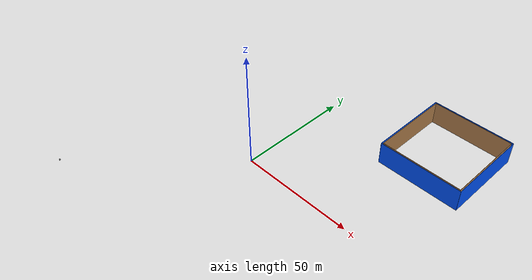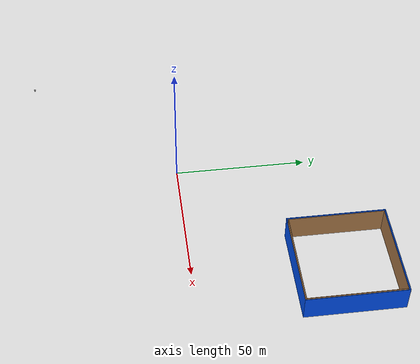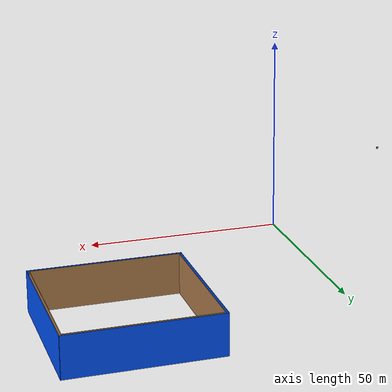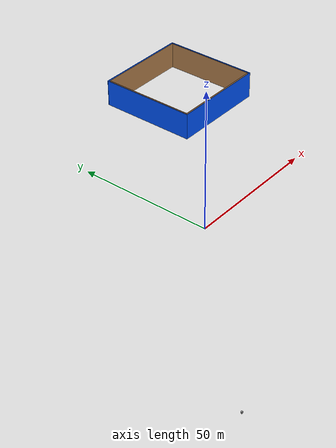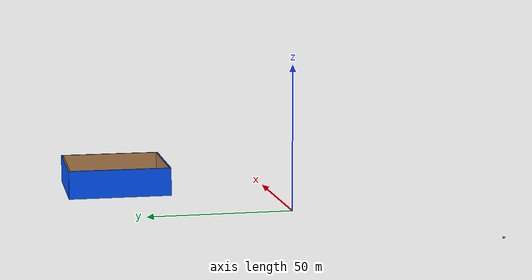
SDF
<?xml version='1.0'?>
<sdf version='1.6'>
  <model name='FlyField3_RailFence'>
    <link name='Wall_0'>
      <pose frame=''>-54.75 -54.75 0 0 -0 0</pose>
      <inertial>
        <mass>1</mass>
        <pose frame=''>0 0 0 0 -0 0</pose>
        <inertia>
          <ixx>1</ixx>
          <ixy>0</ixy>
          <ixz>0</ixz>
          <iyy>1</iyy>
          <iyz>0</iyz>
          <izz>1</izz>
        </inertia>
      </inertial>
      <self_collide>0</self_collide>
      <kinematic>0</kinematic>
      <visual name='Wall_0_Visual'>
        <pose frame=''>0 0 0.25 0 -0 0</pose>
        <geometry>
          <box>
            <size>0.5 0.5 0.5</size>
          </box>
        </geometry>
        <material>
          <script>
            <uri>file://media/materials/scripts/gazebo.material</uri>
            <name>Gazebo/Grey</name>
          </script>
          <ambient>1 1 1 1</ambient>
          <diffuse>0.7 0.7 0.7 1</diffuse>
          <specular>0.01 0.01 0.01 1</specular>
          <emissive>0 0 0 1</emissive>
          <shader type='vertex'>
            <normal_map>__default__</normal_map>
          </shader>
        </material>
        <meta>
          <layer>0</layer>
        </meta>
        <transparency>0</transparency>
        <cast_shadows>1</cast_shadows>
      </visual>
      <collision name='Wall_0_Collision'>
        <laser_retro>0</laser_retro>
        <max_contacts>10</max_contacts>
        <pose frame=''>0 0 0.25 0 -0 0</pose>
        <geometry>
          <box>
            <size>0.5 0.5 0.5</size>
          </box>
        </geometry>
        <surface>
          <friction>
            <ode>
              <mu>1</mu>
              <mu2>1</mu2>
              <fdir1>0 0 0</fdir1>
              <slip1>0</slip1>
              <slip2>0</slip2>
            </ode>
            <torsional>
              <coefficient>1</coefficient>
              <patch_radius>0</patch_radius>
              <surface_radius>0</surface_radius>
              <use_patch_radius>1</use_patch_radius>
              <ode>
                <slip>0</slip>
              </ode>
            </torsional>
          </friction>
          <bounce>
            <restitution_coefficient>0</restitution_coefficient>
            <threshold>1e+06</threshold>
          </bounce>
          <contact>
            <collide_without_contact>0</collide_without_contact>
            <collide_without_contact_bitmask>1</collide_without_contact_bitmask>
            <collide_bitmask>1</collide_bitmask>
            <ode>
              <soft_cfm>0</soft_cfm>
              <soft_erp>0.2</soft_erp>
              <kp>1e+13</kp>
              <kd>1</kd>
              <max_vel>0.01</max_vel>
              <min_depth>0</min_depth>
            </ode>
            <bullet>
              <split_impulse>1</split_impulse>
              <split_impulse_penetration_threshold>-0.01</split_impulse_penetration_threshold>
              <soft_cfm>0</soft_cfm>
              <soft_erp>0.2</soft_erp>
              <kp>1e+13</kp>
              <kd>1</kd>
            </bullet>
          </contact>
        </surface>
      </collision>
    </link>
    <link name='Wall_19'>
      <pose frame=''>37 54.75 0 0 -0 1.5708</pose>
      <self_collide>0</self_collide>
      <kinematic>0</kinematic>
      <gravity>1</gravity>
      <inertial>
        <mass>1</mass>
        <pose frame=''>0 0 0 0 -0 0</pose>
        <inertia>
          <ixx>1</ixx>
          <ixy>0</ixy>
          <ixz>0</ixz>
          <iyy>1</iyy>
          <iyz>0</iyz>
          <izz>1</izz>
        </inertia>
      </inertial>
      <visual name='Wall_19_Visual'>
        <pose frame=''>0 0 5 0 -0 0</pose>
        <geometry>
          <box>
            <size>35.6 0.1 10.1</size>
          </box>
        </geometry>
        <material>
          <script>
            <uri>file://media/materials/scripts/gazebo.material</uri>
            <name>Gazebo/Wood</name>
          </script>
          <ambient>1 1 1 1</ambient>
          <diffuse>1 1 1 1</diffuse>
          <specular>0.2 0.2 0.2 1</specular>
          <emissive>0 0 0 1</emissive>
          <shader type='vertex'>
            <normal_map>__default__</normal_map>
          </shader>
        </material>
        <meta>
          <layer>0</layer>
        </meta>
        <transparency>0</transparency>
        <cast_shadows>1</cast_shadows>
      </visual>
      <collision name='Wall_19_Collision'>
        <laser_retro>0</laser_retro>
        <max_contacts>10</max_contacts>
        <pose frame=''>0 0 5 0 -0 0</pose>
        <geometry>
          <box>
            <size>35.6 0.1 10.1</size>
          </box>
        </geometry>
        <surface>
          <friction>
            <ode>
              <mu>1</mu>
              <mu2>1</mu2>
              <fdir1>0 0 0</fdir1>
              <slip1>0</slip1>
              <slip2>0</slip2>
            </ode>
            <torsional>
              <coefficient>1</coefficient>
              <patch_radius>0</patch_radius>
              <surface_radius>0</surface_radius>
              <use_patch_radius>1</use_patch_radius>
              <ode>
                <slip>0</slip>
              </ode>
            </torsional>
          </friction>
          <bounce>
            <restitution_coefficient>0</restitution_coefficient>
            <threshold>1e+06</threshold>
          </bounce>
          <contact>
            <collide_without_contact>0</collide_without_contact>
            <collide_without_contact_bitmask>1</collide_without_contact_bitmask>
            <collide_bitmask>1</collide_bitmask>
            <ode>
              <soft_cfm>0</soft_cfm>
              <soft_erp>0.2</soft_erp>
              <kp>1e+13</kp>
              <kd>1</kd>
              <max_vel>0.01</max_vel>
              <min_depth>0</min_depth>
            </ode>
            <bullet>
              <split_impulse>1</split_impulse>
              <split_impulse_penetration_threshold>-0.01</split_impulse_penetration_threshold>
              <soft_cfm>0</soft_cfm>
              <soft_erp>0.2</soft_erp>
              <kp>1e+13</kp>
              <kd>1</kd>
            </bullet>
          </contact>
        </surface>
      </collision>
    </link>
    <link name='Wall_21'>
      <pose frame=''>54.75 73.1 0 0 -0 3.14159</pose>
      <inertial>
        <mass>1</mass>
        <pose frame=''>0 0 0 0 -0 0</pose>
        <inertia>
          <ixx>1</ixx>
          <ixy>0</ixy>
          <ixz>0</ixz>
          <iyy>1</iyy>
          <iyz>0</iyz>
          <izz>1</izz>
        </inertia>
      </inertial>
      <self_collide>0</self_collide>
      <kinematic>0</kinematic>
      <visual name='Wall_21_Visual'>
        <pose frame=''>0 0 5 0 -0 0</pose>
        <geometry>
          <box>
            <size>36.8 0.1 10.1</size>
          </box>
        </geometry>
        <material>
          <script>
            <uri>file://media/materials/scripts/gazebo.material</uri>
            <name>Gazebo/Grey</name>
          </script>
          <ambient>0 0.333 1 1</ambient>
          <diffuse>0.7 0.7 0.7 1</diffuse>
          <specular>0.01 0.01 0.01 1</specular>
          <emissive>0 0 0 1</emissive>
          <shader type='vertex'>
            <normal_map>__default__</normal_map>
          </shader>
        </material>
        <meta>
          <layer>0</layer>
        </meta>
        <transparency>0</transparency>
        <cast_shadows>1</cast_shadows>
      </visual>
      <collision name='Wall_21_Collision'>
        <laser_retro>0</laser_retro>
        <max_contacts>10</max_contacts>
        <pose frame=''>0 0 5 0 -0 0</pose>
        <geometry>
          <box>
            <size>36.8 0.1 10.1</size>
          </box>
        </geometry>
        <surface>
          <friction>
            <ode>
              <mu>1</mu>
              <mu2>1</mu2>
              <fdir1>0 0 0</fdir1>
              <slip1>0</slip1>
              <slip2>0</slip2>
            </ode>
            <torsional>
              <coefficient>1</coefficient>
              <patch_radius>0</patch_radius>
              <surface_radius>0</surface_radius>
              <use_patch_radius>1</use_patch_radius>
              <ode>
                <slip>0</slip>
              </ode>
            </torsional>
          </friction>
          <bounce>
            <restitution_coefficient>0</restitution_coefficient>
            <threshold>1e+06</threshold>
          </bounce>
          <contact>
            <collide_without_contact>0</collide_without_contact>
            <collide_without_contact_bitmask>1</collide_without_contact_bitmask>
            <collide_bitmask>1</collide_bitmask>
            <ode>
              <soft_cfm>0</soft_cfm>
              <soft_erp>0.2</soft_erp>
              <kp>1e+13</kp>
              <kd>1</kd>
              <max_vel>0.01</max_vel>
              <min_depth>0</min_depth>
            </ode>
            <bullet>
              <split_impulse>1</split_impulse>
              <split_impulse_penetration_threshold>-0.01</split_impulse_penetration_threshold>
              <soft_cfm>0</soft_cfm>
              <soft_erp>0.2</soft_erp>
              <kp>1e+13</kp>
              <kd>1</kd>
            </bullet>
          </contact>
        </surface>
      </collision>
    </link>
    <link name='Wall_23'>
      <pose frame=''>73.1 54.75 0 0 -0 1.5708</pose>
      <inertial>
        <mass>1</mass>
        <pose frame=''>0 0 0 0 -0 0</pose>
        <inertia>
          <ixx>1</ixx>
          <ixy>0</ixy>
          <ixz>0</ixz>
          <iyy>1</iyy>
          <iyz>0</iyz>
          <izz>1</izz>
        </inertia>
      </inertial>
      <self_collide>0</self_collide>
      <kinematic>0</kinematic>
      <gravity>1</gravity>
      <visual name='Wall_23_Visual'>
        <pose frame=''>0 0 5 0 -0 0</pose>
        <geometry>
          <box>
            <size>36.8 0.1 10.1</size>
          </box>
        </geometry>
        <material>
          <script>
            <uri>file://media/materials/scripts/gazebo.material</uri>
            <name>Gazebo/Grey</name>
          </script>
          <ambient>0 0.333 1 1</ambient>
          <diffuse>0.7 0.7 0.7 1</diffuse>
          <specular>0.01 0.01 0.01 1</specular>
          <emissive>0 0 0 1</emissive>
          <shader type='vertex'>
            <normal_map>__default__</normal_map>
          </shader>
        </material>
        <meta>
          <layer>0</layer>
        </meta>
        <transparency>0</transparency>
        <cast_shadows>1</cast_shadows>
      </visual>
      <collision name='Wall_23_Collision'>
        <laser_retro>0</laser_retro>
        <max_contacts>10</max_contacts>
        <pose frame=''>0 0 5 0 -0 0</pose>
        <geometry>
          <box>
            <size>36.8 0.1 10.1</size>
          </box>
        </geometry>
        <surface>
          <friction>
            <ode>
              <mu>1</mu>
              <mu2>1</mu2>
              <fdir1>0 0 0</fdir1>
              <slip1>0</slip1>
              <slip2>0</slip2>
            </ode>
            <torsional>
              <coefficient>1</coefficient>
              <patch_radius>0</patch_radius>
              <surface_radius>0</surface_radius>
              <use_patch_radius>1</use_patch_radius>
              <ode>
                <slip>0</slip>
              </ode>
            </torsional>
          </friction>
          <bounce>
            <restitution_coefficient>0</restitution_coefficient>
            <threshold>1e+06</threshold>
          </bounce>
          <contact>
            <collide_without_contact>0</collide_without_contact>
            <collide_without_contact_bitmask>1</collide_without_contact_bitmask>
            <collide_bitmask>1</collide_bitmask>
            <ode>
              <soft_cfm>0</soft_cfm>
              <soft_erp>0.2</soft_erp>
              <kp>1e+13</kp>
              <kd>1</kd>
              <max_vel>0.01</max_vel>
              <min_depth>0</min_depth>
            </ode>
            <bullet>
              <split_impulse>1</split_impulse>
              <split_impulse_penetration_threshold>-0.01</split_impulse_penetration_threshold>
              <soft_cfm>0</soft_cfm>
              <soft_erp>0.2</soft_erp>
              <kp>1e+13</kp>
              <kd>1</kd>
            </bullet>
          </contact>
        </surface>
      </collision>
    </link>
    <link name='Wall_25'>
      <pose frame=''>54.75 36.4 0 0 -0 0</pose>
      <inertial>
        <mass>1</mass>
        <pose frame=''>0 0 0 0 -0 0</pose>
        <inertia>
          <ixx>1</ixx>
          <ixy>0</ixy>
          <ixz>0</ixz>
          <iyy>1</iyy>
          <iyz>0</iyz>
          <izz>1</izz>
        </inertia>
      </inertial>
      <self_collide>0</self_collide>
      <kinematic>0</kinematic>
      <visual name='Wall_25_Visual'>
        <pose frame=''>0 0 5 0 -0 0</pose>
        <geometry>
          <box>
            <size>36.8 0.1 10.1</size>
          </box>
        </geometry>
        <material>
          <script>
            <uri>file://media/materials/scripts/gazebo.material</uri>
            <name>Gazebo/Grey</name>
          </script>
          <ambient>0 0.333 1 1</ambient>
          <diffuse>0.7 0.7 0.7 1</diffuse>
          <specular>0.01 0.01 0.01 1</specular>
          <emissive>0 0 0 1</emissive>
          <shader type='vertex'>
            <normal_map>__default__</normal_map>
          </shader>
        </material>
        <meta>
          <layer>0</layer>
        </meta>
        <transparency>0</transparency>
        <cast_shadows>1</cast_shadows>
      </visual>
      <collision name='Wall_25_Collision'>
        <laser_retro>0</laser_retro>
        <max_contacts>10</max_contacts>
        <pose frame=''>0 0 5 0 -0 0</pose>
        <geometry>
          <box>
            <size>36.8 0.1 10.1</size>
          </box>
        </geometry>
        <surface>
          <friction>
            <ode>
              <mu>1</mu>
              <mu2>1</mu2>
              <fdir1>0 0 0</fdir1>
              <slip1>0</slip1>
              <slip2>0</slip2>
            </ode>
            <torsional>
              <coefficient>1</coefficient>
              <patch_radius>0</patch_radius>
              <surface_radius>0</surface_radius>
              <use_patch_radius>1</use_patch_radius>
              <ode>
                <slip>0</slip>
              </ode>
            </torsional>
          </friction>
          <bounce>
            <restitution_coefficient>0</restitution_coefficient>
            <threshold>1e+06</threshold>
          </bounce>
          <contact>
            <collide_without_contact>0</collide_without_contact>
            <collide_without_contact_bitmask>1</collide_without_contact_bitmask>
            <collide_bitmask>1</collide_bitmask>
            <ode>
              <soft_cfm>0</soft_cfm>
              <soft_erp>0.2</soft_erp>
              <kp>1e+13</kp>
              <kd>1</kd>
              <max_vel>0.01</max_vel>
              <min_depth>0</min_depth>
            </ode>
            <bullet>
              <split_impulse>1</split_impulse>
              <split_impulse_penetration_threshold>-0.01</split_impulse_penetration_threshold>
              <soft_cfm>0</soft_cfm>
              <soft_erp>0.2</soft_erp>
              <kp>1e+13</kp>
              <kd>1</kd>
            </bullet>
          </contact>
        </surface>
      </collision>
    </link>
    <link name='Wall_27'>
      <pose frame=''>36.4 54.75 0 0 0 -1.5708</pose>
      <inertial>
        <mass>1</mass>
        <pose frame=''>0 0 0 0 -0 0</pose>
        <inertia>
          <ixx>1</ixx>
          <ixy>0</ixy>
          <ixz>0</ixz>
          <iyy>1</iyy>
          <iyz>0</iyz>
          <izz>1</izz>
        </inertia>
      </inertial>
      <self_collide>0</self_collide>
      <kinematic>0</kinematic>
      <visual name='Wall_27_Visual'>
        <pose frame=''>0 0 5 0 -0 0</pose>
        <geometry>
          <box>
            <size>36.8 0.1 10.1</size>
          </box>
        </geometry>
        <material>
          <script>
            <uri>file://media/materials/scripts/gazebo.material</uri>
            <name>Gazebo/Grey</name>
          </script>
          <ambient>0 0.333 1 1</ambient>
          <diffuse>0.7 0.7 0.7 1</diffuse>
          <specular>0.01 0.01 0.01 1</specular>
          <emissive>0 0 0 1</emissive>
          <shader type='vertex'>
            <normal_map>__default__</normal_map>
          </shader>
        </material>
        <meta>
          <layer>0</layer>
        </meta>
        <transparency>0</transparency>
        <cast_shadows>1</cast_shadows>
      </visual>
      <collision name='Wall_27_Collision'>
        <laser_retro>0</laser_retro>
        <max_contacts>10</max_contacts>
        <pose frame=''>0 0 5 0 -0 0</pose>
        <geometry>
          <box>
            <size>36.8 0.1 10.1</size>
          </box>
        </geometry>
        <surface>
          <friction>
            <ode>
              <mu>1</mu>
              <mu2>1</mu2>
              <fdir1>0 0 0</fdir1>
              <slip1>0</slip1>
              <slip2>0</slip2>
            </ode>
            <torsional>
              <coefficient>1</coefficient>
              <patch_radius>0</patch_radius>
              <surface_radius>0</surface_radius>
              <use_patch_radius>1</use_patch_radius>
              <ode>
                <slip>0</slip>
              </ode>
            </torsional>
          </friction>
          <bounce>
            <restitution_coefficient>0</restitution_coefficient>
            <threshold>1e+06</threshold>
          </bounce>
          <contact>
            <collide_without_contact>0</collide_without_contact>
            <collide_without_contact_bitmask>1</collide_without_contact_bitmask>
            <collide_bitmask>1</collide_bitmask>
            <ode>
              <soft_cfm>0</soft_cfm>
              <soft_erp>0.2</soft_erp>
              <kp>1e+13</kp>
              <kd>1</kd>
              <max_vel>0.01</max_vel>
              <min_depth>0</min_depth>
            </ode>
            <bullet>
              <split_impulse>1</split_impulse>
              <split_impulse_penetration_threshold>-0.01</split_impulse_penetration_threshold>
              <soft_cfm>0</soft_cfm>
              <soft_erp>0.2</soft_erp>
              <kp>1e+13</kp>
              <kd>1</kd>
            </bullet>
          </contact>
        </surface>
      </collision>
    </link>
    <link name='Wall_5'>
      <pose frame=''>54.75 37 0 0 -0 0</pose>
      <self_collide>0</self_collide>
      <kinematic>0</kinematic>
      <gravity>1</gravity>
      <inertial>
        <mass>1</mass>
        <pose frame=''>0 0 0 0 -0 0</pose>
        <inertia>
          <ixx>1</ixx>
          <ixy>0</ixy>
          <ixz>0</ixz>
          <iyy>1</iyy>
          <iyz>0</iyz>
          <izz>1</izz>
        </inertia>
      </inertial>
      <visual name='Wall_5_Visual'>
        <pose frame=''>0 0 5 0 -0 0</pose>
        <geometry>
          <box>
            <size>35.6 0.1 10.1</size>
          </box>
        </geometry>
        <material>
          <script>
            <uri>file://media/materials/scripts/gazebo.material</uri>
            <name>Gazebo/Wood</name>
          </script>
          <ambient>1 1 1 1</ambient>
          <diffuse>1 1 1 1</diffuse>
          <specular>0.2 0.2 0.2 1</specular>
          <emissive>0 0 0 1</emissive>
          <shader type='vertex'>
            <normal_map>__default__</normal_map>
          </shader>
        </material>
        <meta>
          <layer>0</layer>
        </meta>
        <transparency>0</transparency>
        <cast_shadows>1</cast_shadows>
      </visual>
      <collision name='Wall_5_Collision'>
        <laser_retro>0</laser_retro>
        <max_contacts>10</max_contacts>
        <pose frame=''>0 0 5 0 -0 0</pose>
        <geometry>
          <box>
            <size>35.6 0.1 10.1</size>
          </box>
        </geometry>
        <surface>
          <friction>
            <ode>
              <mu>1</mu>
              <mu2>1</mu2>
              <fdir1>0 0 0</fdir1>
              <slip1>0</slip1>
              <slip2>0</slip2>
            </ode>
            <torsional>
              <coefficient>1</coefficient>
              <patch_radius>0</patch_radius>
              <surface_radius>0</surface_radius>
              <use_patch_radius>1</use_patch_radius>
              <ode>
                <slip>0</slip>
              </ode>
            </torsional>
          </friction>
          <bounce>
            <restitution_coefficient>0</restitution_coefficient>
            <threshold>1e+06</threshold>
          </bounce>
          <contact>
            <collide_without_contact>0</collide_without_contact>
            <collide_without_contact_bitmask>1</collide_without_contact_bitmask>
            <collide_bitmask>1</collide_bitmask>
            <ode>
              <soft_cfm>0</soft_cfm>
              <soft_erp>0.2</soft_erp>
              <kp>1e+13</kp>
              <kd>1</kd>
              <max_vel>0.01</max_vel>
              <min_depth>0</min_depth>
            </ode>
            <bullet>
              <split_impulse>1</split_impulse>
              <split_impulse_penetration_threshold>-0.01</split_impulse_penetration_threshold>
              <soft_cfm>0</soft_cfm>
              <soft_erp>0.2</soft_erp>
              <kp>1e+13</kp>
              <kd>1</kd>
            </bullet>
          </contact>
        </surface>
      </collision>
    </link>
    <link name='Wall_6'>
      <pose frame=''>72.5 54.75 0 0 -0 1.5708</pose>
      <inertial>
        <mass>1</mass>
        <pose frame=''>0 0 0 0 -0 0</pose>
        <inertia>
          <ixx>1</ixx>
          <ixy>0</ixy>
          <ixz>0</ixz>
          <iyy>1</iyy>
          <iyz>0</iyz>
          <izz>1</izz>
        </inertia>
      </inertial>
      <self_collide>0</self_collide>
      <kinematic>0</kinematic>
      <gravity>1</gravity>
      <visual name='Wall_6_Visual'>
        <pose frame=''>0 0 5 0 -0 0</pose>
        <geometry>
          <box>
            <size>35.6 0.1 10.1</size>
          </box>
        </geometry>
        <material>
          <script>
            <uri>file://media/materials/scripts/gazebo.material</uri>
            <name>Gazebo/Wood</name>
          </script>
          <ambient>1 1 1 1</ambient>
          <diffuse>1 1 1 1</diffuse>
          <specular>0.2 0.2 0.2 1</specular>
          <emissive>0 0 0 1</emissive>
          <shader type='vertex'>
            <normal_map>__default__</normal_map>
          </shader>
        </material>
        <meta>
          <layer>0</layer>
        </meta>
        <transparency>0</transparency>
        <cast_shadows>1</cast_shadows>
      </visual>
      <collision name='Wall_6_Collision'>
        <laser_retro>0</laser_retro>
        <max_contacts>10</max_contacts>
        <pose frame=''>0 0 5 0 -0 0</pose>
        <geometry>
          <box>
            <size>35.6 0.1 10.1</size>
          </box>
        </geometry>
        <surface>
          <friction>
            <ode>
              <mu>1</mu>
              <mu2>1</mu2>
              <fdir1>0 0 0</fdir1>
              <slip1>0</slip1>
              <slip2>0</slip2>
            </ode>
            <torsional>
              <coefficient>1</coefficient>
              <patch_radius>0</patch_radius>
              <surface_radius>0</surface_radius>
              <use_patch_radius>1</use_patch_radius>
              <ode>
                <slip>0</slip>
              </ode>
            </torsional>
          </friction>
          <bounce>
            <restitution_coefficient>0</restitution_coefficient>
            <threshold>1e+06</threshold>
          </bounce>
          <contact>
            <collide_without_contact>0</collide_without_contact>
            <collide_without_contact_bitmask>1</collide_without_contact_bitmask>
            <collide_bitmask>1</collide_bitmask>
            <ode>
              <soft_cfm>0</soft_cfm>
              <soft_erp>0.2</soft_erp>
              <kp>1e+13</kp>
              <kd>1</kd>
              <max_vel>0.01</max_vel>
              <min_depth>0</min_depth>
            </ode>
            <bullet>
              <split_impulse>1</split_impulse>
              <split_impulse_penetration_threshold>-0.01</split_impulse_penetration_threshold>
              <soft_cfm>0</soft_cfm>
              <soft_erp>0.2</soft_erp>
              <kp>1e+13</kp>
              <kd>1</kd>
            </bullet>
          </contact>
        </surface>
      </collision>
    </link>
    <link name='Wall_7'>
      <pose frame=''>54.75 72.5 0 0 -0 3.14159</pose>
      <self_collide>0</self_collide>
      <kinematic>0</kinematic>
      <gravity>1</gravity>
      <inertial>
        <mass>1</mass>
        <pose frame=''>0 0 0 0 -0 0</pose>
        <inertia>
          <ixx>1</ixx>
          <ixy>0</ixy>
          <ixz>0</ixz>
          <iyy>1</iyy>
          <iyz>0</iyz>
          <izz>1</izz>
        </inertia>
      </inertial>
      <visual name='Wall_7_Visual'>
        <pose frame=''>0 0 5 0 -0 0</pose>
        <geometry>
          <box>
            <size>35.6 0.1 10.1</size>
          </box>
        </geometry>
        <material>
          <script>
            <uri>file://media/materials/scripts/gazebo.material</uri>
            <name>Gazebo/Wood</name>
          </script>
          <ambient>0.922 0.808 0.616 1</ambient>
          <diffuse>1 1 1 1</diffuse>
          <specular>0.2 0.2 0.2 1</specular>
          <emissive>0 0 0 1</emissive>
          <shader type='vertex'>
            <normal_map>__default__</normal_map>
          </shader>
        </material>
        <meta>
          <layer>0</layer>
        </meta>
        <transparency>0</transparency>
        <cast_shadows>1</cast_shadows>
      </visual>
      <collision name='Wall_7_Collision'>
        <laser_retro>0</laser_retro>
        <max_contacts>10</max_contacts>
        <pose frame=''>0 0 5 0 -0 0</pose>
        <geometry>
          <box>
            <size>35.6 0.1 10.1</size>
          </box>
        </geometry>
        <surface>
          <friction>
            <ode>
              <mu>1</mu>
              <mu2>1</mu2>
              <fdir1>0 0 0</fdir1>
              <slip1>0</slip1>
              <slip2>0</slip2>
            </ode>
            <torsional>
              <coefficient>1</coefficient>
              <patch_radius>0</patch_radius>
              <surface_radius>0</surface_radius>
              <use_patch_radius>1</use_patch_radius>
              <ode>
                <slip>0</slip>
              </ode>
            </torsional>
          </friction>
          <bounce>
            <restitution_coefficient>0</restitution_coefficient>
            <threshold>1e+06</threshold>
          </bounce>
          <contact>
            <collide_without_contact>0</collide_without_contact>
            <collide_without_contact_bitmask>1</collide_without_contact_bitmask>
            <collide_bitmask>1</collide_bitmask>
            <ode>
              <soft_cfm>0</soft_cfm>
              <soft_erp>0.2</soft_erp>
              <kp>1e+13</kp>
              <kd>1</kd>
              <max_vel>0.01</max_vel>
              <min_depth>0</min_depth>
            </ode>
            <bullet>
              <split_impulse>1</split_impulse>
              <split_impulse_penetration_threshold>-0.01</split_impulse_penetration_threshold>
              <soft_cfm>0</soft_cfm>
              <soft_erp>0.2</soft_erp>
              <kp>1e+13</kp>
              <kd>1</kd>
            </bullet>
          </contact>
        </surface>
      </collision>
    </link>
    <static>1</static>
    <allow_auto_disable>1</allow_auto_disable>
  </model>
</sdf>
